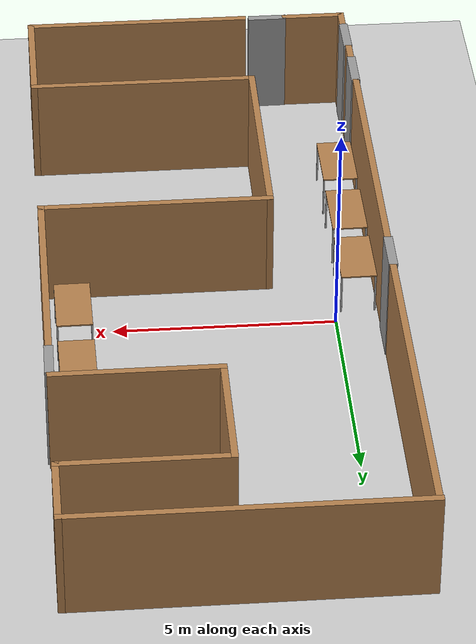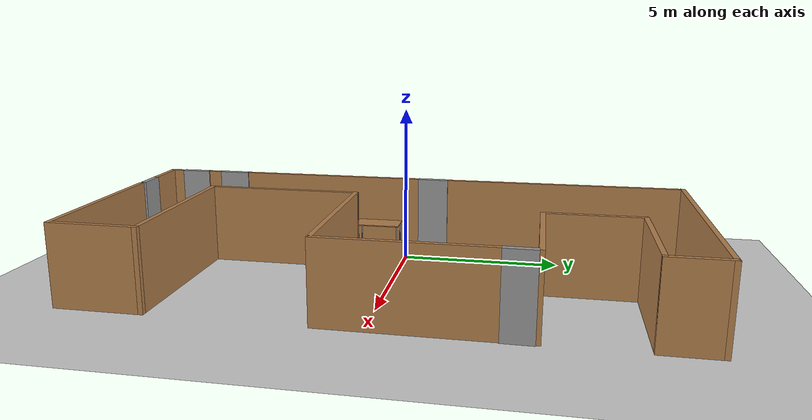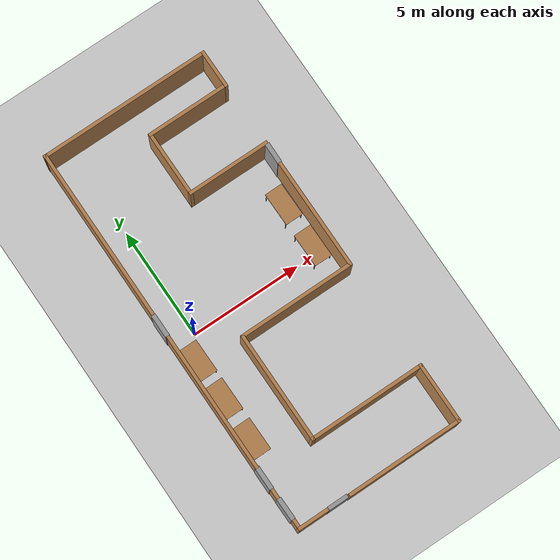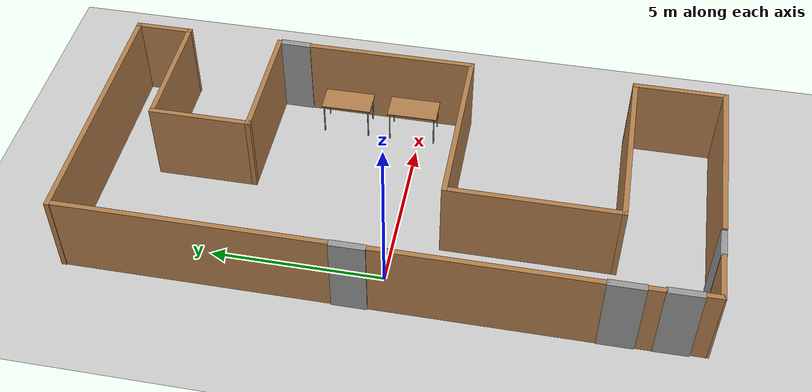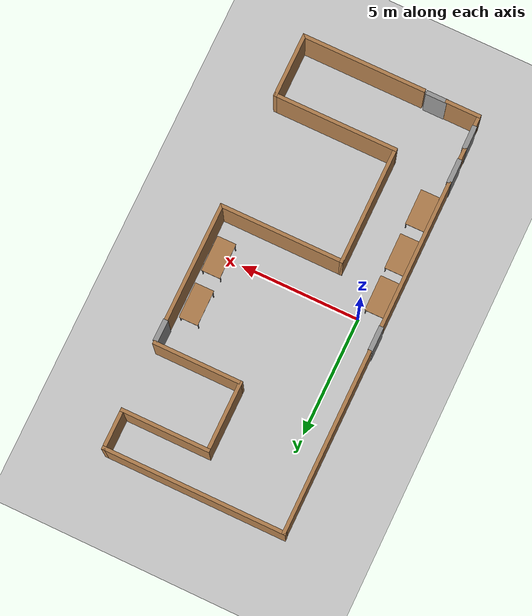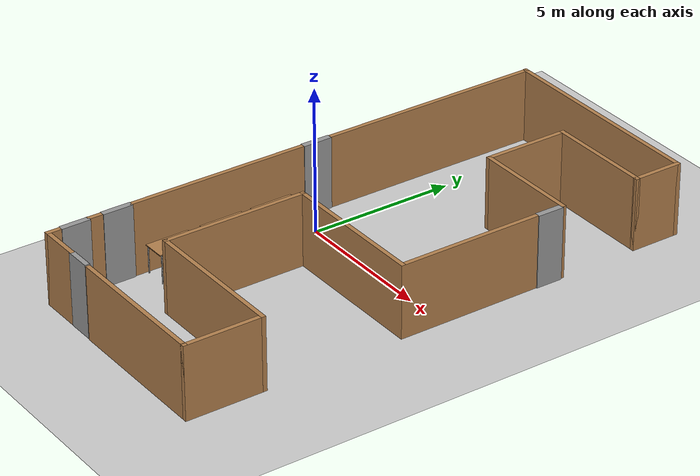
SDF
<sdf version="1.7">
 <world name="default">
  <light name="sun" type="directional">
   <pose>0 0 10 0 -0 0</pose>
   <diffuse>0.8 0.8 0.8 1</diffuse>
   <specular>0.2 0.2 0.2 1</specular>
   <attenuation>
    <range>1000</range>
    <constant>0.9</constant>
    <linear>0.01</linear>
    <quadratic>0.001</quadratic>
   </attenuation>
   <direction>-0.5 0.1 -0.9</direction>
   <spot><inner_angle>0</inner_angle><outer_angle>0</outer_angle><falloff>0</falloff></spot>
  </light>
  <model name="ground_plane">
   <static>1</static>
   <link name="link">
    <collision name="collision">
     <geometry><plane><normal>0 0 1</normal><size>100 100</size></plane></geometry>
     <surface>
      <contact><collide_bitmask>65535</collide_bitmask></contact>
      <friction><ode><mu>100</mu><mu2>50</mu2></ode></friction>
     </surface>
    </collision>
    <visual name="visual">
     <cast_shadows>0</cast_shadows>
     <geometry><plane><normal>0 0 1</normal><size>100 100</size></plane></geometry>
     <material>
      <script><uri>file://media/materials/scripts/gazebo.material</uri><name>Gazebo/Grey</name></script>
     </material>
    </visual>
   </link>
  </model>
  <gravity>0 0 -9.8</gravity>
  <magnetic_field>6e-06 2.3e-05 -4.2e-05</magnetic_field>
  <atmosphere type="adiabatic"/>
  <physics type="ode">
   <max_step_size>0.001</max_step_size>
   <real_time_factor>1</real_time_factor>
   <real_time_update_rate>1000</real_time_update_rate>
  </physics>
  <scene><ambient>0.4 0.4 0.4 1</ambient><background>0.7 0.7 0.7 1</background><shadows>1</shadows></scene>
  <spherical_coordinates>
   <surface_model>EARTH_WGS84</surface_model>
   <latitude_deg>0</latitude_deg>
   <longitude_deg>0</longitude_deg>
   <elevation>0</elevation>
   <heading_deg>0</heading_deg>
  </spherical_coordinates>
  <model name="coworking">
   <pose>2.38403 0.05028 0 0 -0 0</pose>
   <link name="Door_2">
    <collision name="Door_2_Collision">
     <geometry><box><size>0.9 0.17 2.5</size></box></geometry>
     <pose>0 0 1.25 0 -0 0</pose>
    </collision>
    <visual name="Door_2_Visual">
     <pose>0 0 1.25 0 -0 0</pose>
     <geometry><box><size>0.9 0.17 2.5</size></box></geometry>
     <material>
      <script><uri>file://media/materials/scripts/gazebo.material</uri><name>Gazebo/Grey</name></script>
     </material>
    </visual>
    <pose>-1.58523 -8.86817 0 0 -0 0</pose>
   </link>
   <link name="Door_3">
    <collision name="Door_3_Collision">
     <geometry><box><size>0.992 0.2 2.5</size></box></geometry>
     <pose>0 0 1.25 0 -0 0</pose>
    </collision>
    <visual name="Door_3_Visual">
     <pose>0 0 1.25 0 -0 0</pose>
     <geometry><box><size>0.992 0.2 2.5</size></box></geometry>
     <material>
      <script><uri>file://media/materials/scripts/gazebo.material</uri><name>Gazebo/Grey</name></script>
     </material>
    </visual>
    <pose>-3.39441 -7.95054 0 0 -0 -1.56051</pose>
   </link>
   <link name="Door_4">
    <collision name="Door_4_Collision">
     <geometry><box><size>1.033 0.2 2.5</size></box></geometry>
     <pose>0 0 1.25 0 -0 0</pose>
    </collision>
    <visual name="Door_4_Visual">
     <pose>0 0 1.25 0 -0 0</pose>
     <geometry><box><size>1.033 0.2 2.5</size></box></geometry>
     <material>
      <script><uri>file://media/materials/scripts/gazebo.material</uri><name>Gazebo/Grey</name></script>
     </material>
    </visual>
    <pose>-3.41995 -6.48894 0 0 0 -1.56936</pose>
   </link>
   <link name="Door_6">
    <collision name="Door_6_Collision">
     <geometry><box><size>1.009 0.2 2.5</size></box></geometry>
     <pose>0 0 1.25 0 -0 0</pose>
    </collision>
    <visual name="Door_6_Visual">
     <pose>0 0 1.25 0 -0 0</pose>
     <geometry><box><size>1.009 0.2 2.5</size></box></geometry>
     <material>
      <script><uri>file://media/materials/scripts/gazebo.material</uri><name>Gazebo/Grey</name></script>
     </material>
    </visual>
    <pose>-3.43548 0.713593 0 0 -0 -1.57072</pose>
   </link>
   <link name="Door_7">
    <collision name="Door_7_Collision">
     <geometry><box><size>0.917 0.2 2.5</size></box></geometry>
     <pose>0 0 1.25 0 -0 0</pose>
    </collision>
    <visual name="Door_7_Visual">
     <pose>0 0 1.25 0 -0 0</pose>
     <geometry><box><size>0.917 0.2 2.5</size></box></geometry>
     <material>
      <script><uri>file://media/materials/scripts/gazebo.material</uri><name>Gazebo/Grey</name></script>
     </material>
    </visual>
    <pose>4.10778 3.9327 0 0 -0 1.56067</pose>
   </link>
   <link name="Wall_20">
    <collision name="Wall_20_Collision">
     <geometry><box><size>5.25 0.15 2.5</size></box></geometry>
     <pose>0 0 1.25 0 -0 0</pose>
    </collision>
    <visual name="Wall_20_Visual">
     <pose>0 0 1.25 0 -0 0</pose>
     <geometry><box><size>5.25 0.15 2.5</size></box></geometry>
     <material>
      <script><uri>file://media/materials/scripts/gazebo.material</uri><name>Gazebo/Wood</name></script>
      <ambient>1 1 1 1</ambient>
     </material>
     <meta><layer>0</layer></meta>
    </visual>
    <pose>1.54997 -8.89477 0 0 -0 0</pose>
   </link>
   <link name="Wall_21">
    <collision name="Wall_21_Collision">
     <geometry><box><size>2.75 0.15 2.5</size></box></geometry>
     <pose>0 0 1.25 0 -0 0</pose>
    </collision>
    <visual name="Wall_21_Visual">
     <pose>0 0 1.25 0 -0 0</pose>
     <geometry><box><size>2.75 0.15 2.5</size></box></geometry>
     <material>
      <script><uri>file://media/materials/scripts/gazebo.material</uri><name>Gazebo/Wood</name></script>
      <ambient>1 1 1 1</ambient>
     </material>
     <meta><layer>0</layer></meta>
    </visual>
    <pose>4.09997 -7.59477 0 0 -0 1.5708</pose>
   </link>
   <link name="Wall_22">
    <collision name="Wall_22_Collision">
     <geometry><box><size>5.25 0.15 2.5</size></box></geometry>
     <pose>0 0 1.25 0 -0 0</pose>
    </collision>
    <visual name="Wall_22_Visual">
     <pose>0 0 1.25 0 -0 0</pose>
     <geometry><box><size>5.25 0.15 2.5</size></box></geometry>
     <material>
      <script><uri>file://media/materials/scripts/gazebo.material</uri><name>Gazebo/Wood</name></script>
      <ambient>1 1 1 1</ambient>
     </material>
     <meta><layer>0</layer></meta>
    </visual>
    <pose>1.54997 -6.29477 0 0 -0 3.14159</pose>
   </link>
   <link name="Wall_23">
    <collision name="Wall_23_Collision">
     <geometry><box><size>5 0.15 2.5</size></box></geometry>
     <pose>0 0 1.25 0 -0 0</pose>
    </collision>
    <visual name="Wall_23_Visual">
     <pose>0 0 1.25 0 -0 0</pose>
     <geometry><box><size>5 0.15 2.5</size></box></geometry>
     <material>
      <script><uri>file://media/materials/scripts/gazebo.material</uri><name>Gazebo/Wood</name></script>
      <ambient>1 1 1 1</ambient>
     </material>
     <meta><layer>0</layer></meta>
    </visual>
    <pose>-1.00003 -3.86977 0 0 -0 1.5708</pose>
   </link>
   <link name="Wall_24">
    <collision name="Wall_24_Collision">
     <geometry><box><size>5.25 0.15 2.5</size></box></geometry>
     <pose>0 0 1.25 0 -0 0</pose>
    </collision>
    <visual name="Wall_24_Visual">
     <pose>0 0 1.25 0 -0 0</pose>
     <geometry><box><size>5.25 0.15 2.5</size></box></geometry>
     <material>
      <script><uri>file://media/materials/scripts/gazebo.material</uri><name>Gazebo/Wood</name></script>
      <ambient>1 1 1 1</ambient>
     </material>
     <meta><layer>0</layer></meta>
    </visual>
    <pose>1.54997 -1.44477 0 0 -0 0</pose>
   </link>
   <link name="Wall_25">
    <collision name="Wall_25_Collision">
     <geometry><box><size>5 0.15 2.5</size></box></geometry>
     <pose>0 0 1.25 0 -0 0</pose>
    </collision>
    <visual name="Wall_25_Visual">
     <pose>0 0 1.25 0 -0 0</pose>
     <geometry><box><size>5 0.15 2.5</size></box></geometry>
     <material>
      <script><uri>file://media/materials/scripts/gazebo.material</uri><name>Gazebo/Wood</name></script>
      <ambient>1 1 1 1</ambient>
     </material>
     <meta><layer>0</layer></meta>
    </visual>
    <pose>4.09997 0.980234 0 0 -0 1.5708</pose>
   </link>
   <link name="Wall_27">
    <collision name="Wall_27_Collision">
     <geometry><box><size>1.5 0.15 2.5</size></box></geometry>
     <pose>0 0 1.25 0 -0 0</pose>
    </collision>
    <visual name="Wall_27_Visual">
     <pose>0 0 1.25 0 -0 0</pose>
     <geometry><box><size>1.5 0.15 2.5</size></box></geometry>
     <material>
      <script><uri>file://media/materials/scripts/gazebo.material</uri><name>Gazebo/Wood</name></script>
      <ambient>1 1 1 1</ambient>
     </material>
     <meta><layer>0</layer></meta>
    </visual>
    <pose>-2.70225 -8.87117 0 0 -0 3.14159</pose>
   </link>
   <link name="Wall_28">
    <collision name="Wall_28_Collision">
     <geometry><box><size>0.5 0.15 2.5</size></box></geometry>
     <pose>0 0 1.25 0 -0 0</pose>
    </collision>
    <visual name="Wall_28_Visual">
     <pose>0 0 1.25 0 -0 0</pose>
     <geometry><box><size>0.5 0.15 2.5</size></box></geometry>
     <material>
      <script><uri>file://media/materials/scripts/gazebo.material</uri><name>Gazebo/Wood</name></script>
      <ambient>1 1 1 1</ambient>
     </material>
     <meta><layer>0</layer></meta>
    </visual>
    <pose>-3.37725 -8.69617 0 0 -0 1.5708</pose>
   </link>
   <link name="Wall_30">
    <collision name="Wall_30_Collision">
     <geometry><box><size>0.5 0.15 2.5</size></box></geometry>
     <pose>0 0 1.25 0 -0 0</pose>
    </collision>
    <visual name="Wall_30_Visual">
     <pose>0 0 1.25 0 -0 0</pose>
     <geometry><box><size>0.5 0.15 2.5</size></box></geometry>
     <material>
      <script><uri>file://media/materials/scripts/gazebo.material</uri><name>Gazebo/Wood</name></script>
      <ambient>1 1 1 1</ambient>
     </material>
     <meta><layer>0</layer></meta>
    </visual>
    <pose>-3.41461 -7.24963 0 0 -0 1.5708</pose>
   </link>
   <link name="Wall_32">
    <collision name="Wall_32_Collision">
     <geometry><box><size>6.25 0.15 2.5</size></box></geometry>
     <pose>0 0 1.25 0 -0 0</pose>
    </collision>
    <visual name="Wall_32_Visual">
     <pose>0 0 1.25 0 -0 0</pose>
     <geometry><box><size>6.25 0.15 2.5</size></box></geometry>
     <material>
      <script><uri>file://media/materials/scripts/gazebo.material</uri><name>Gazebo/Wood</name></script>
      <ambient>1 1 1 1</ambient>
     </material>
     <meta><layer>0</layer></meta>
    </visual>
    <pose>-3.42883 -2.91407 0 0 -0 1.5708</pose>
   </link>
   <link name="Wall_34">
    <collision name="Wall_34_Collision">
     <geometry><box><size>3.75 0.15 2.5</size></box></geometry>
     <pose>0 0 1.25 0 -0 0</pose>
    </collision>
    <visual name="Wall_34_Visual">
     <pose>0 0 1.25 0 -0 0</pose>
     <geometry><box><size>3.75 0.15 2.5</size></box></geometry>
     <material>
      <script><uri>file://media/materials/scripts/gazebo.material</uri><name>Gazebo/Wood</name></script>
      <ambient>1 1 1 1</ambient>
     </material>
     <meta><layer>0</layer></meta>
    </visual>
    <pose>2.29597 4.44477 0 0 -0 3.14159</pose>
   </link>
   <link name="Wall_35">
    <collision name="Wall_35_Collision">
     <geometry><box><size>3 0.15 2.5</size></box></geometry>
     <pose>0 0 1.25 0 -0 0</pose>
    </collision>
    <visual name="Wall_35_Visual">
     <pose>0 0 1.25 0 -0 0</pose>
     <geometry><box><size>3 0.15 2.5</size></box></geometry>
     <material>
      <script><uri>file://media/materials/scripts/gazebo.material</uri><name>Gazebo/Wood</name></script>
      <ambient>1 1 1 1</ambient>
     </material>
     <meta><layer>0</layer></meta>
    </visual>
    <pose>0.49597 5.86977 0 0 -0 1.5708</pose>
   </link>
   <link name="Wall_36">
    <collision name="Wall_36_Collision">
     <geometry><box><size>3.75 0.15 2.5</size></box></geometry>
     <pose>0 0 1.25 0 -0 0</pose>
    </collision>
    <visual name="Wall_36_Visual">
     <pose>0 0 1.25 0 -0 0</pose>
     <geometry><box><size>3.75 0.15 2.5</size></box></geometry>
     <material>
      <script><uri>file://media/materials/scripts/gazebo.material</uri><name>Gazebo/Wood</name></script>
      <ambient>1 1 1 1</ambient>
     </material>
     <meta><layer>0</layer></meta>
    </visual>
    <pose>2.29597 7.29477 0 0 -0 0</pose>
   </link>
   <link name="Wall_40">
    <collision name="Wall_40_Collision">
     <geometry><box><size>1.75 0.15 2.5</size></box></geometry>
     <pose>0 0 1.25 0 -0 0</pose>
    </collision>
    <visual name="Wall_40_Visual">
     <pose>0 0 1.25 0 -0 0</pose>
     <geometry><box><size>1.75 0.15 2.5</size></box></geometry>
     <material>
      <script><uri>file://media/materials/scripts/gazebo.material</uri><name>Gazebo/Wood</name></script>
      <ambient>1 1 1 1</ambient>
     </material>
     <meta><layer>0</layer></meta>
    </visual>
    <pose>4.09597 8.09477 0 0 -0 1.5708</pose>
   </link>
   <link name="Wall_41">
    <collision name="Wall_41_Collision">
     <geometry><box><size>7.69239 0.15 2.5</size></box></geometry>
     <pose>0 0 1.25 0 -0 0</pose>
    </collision>
    <visual name="Wall_41_Visual">
     <pose>0 0 1.25 0 -0 0</pose>
     <geometry><box><size>7.69239 0.15 2.5</size></box></geometry>
     <material>
      <script><uri>file://media/materials/scripts/gazebo.material</uri><name>Gazebo/Wood</name></script>
      <ambient>1 1 1 1</ambient>
     </material>
     <meta><layer>0</layer></meta>
    </visual>
    <pose>0.324775 8.89477 0 0 -0 3.14159</pose>
   </link>
   <link name="Wall_42">
    <collision name="Wall_42_Collision">
     <geometry><box><size>7.75 0.15 2.5</size></box></geometry>
     <pose>0 0 1.25 0 -0 0</pose>
    </collision>
    <visual name="Wall_42_Visual">
     <pose>0 0 1.25 0 -0 0</pose>
     <geometry><box><size>7.75 0.15 2.5</size></box></geometry>
     <material>
      <script><uri>file://media/materials/scripts/gazebo.material</uri><name>Gazebo/Wood</name></script>
      <ambient>1 1 1 1</ambient>
     </material>
     <meta><layer>0</layer></meta>
    </visual>
    <pose>-3.42893 5.09477 0 0 -0 -1.5708</pose>
   </link>
   <static>1</static>
  </model>
  <model name="table">
   <static>1</static>
   <link name="link">
    <collision name="surface">
     <pose>0 0 1 0 -0 0</pose>
     <geometry><box><size>1.5 0.8 0.03</size></box></geometry>
     <surface><friction><ode><mu>0.6</mu><mu2>0.6</mu2></ode></friction></surface>
    </collision>
    <visual name="visual1">
     <pose>0 0 1 0 -0 0</pose>
     <geometry><box><size>1.5 0.8 0.03</size></box></geometry>
     <material>
      <script><uri>file://media/materials/scripts/gazebo.material</uri><name>Gazebo/Wood</name></script>
     </material>
    </visual>
    <collision name="front_left_leg">
     <pose>0.68 0.38 0.5 0 -0 0</pose>
     <geometry><cylinder><radius>0.02</radius><length>1</length></cylinder></geometry>
    </collision>
    <visual name="front_left_leg">
     <pose>0.68 0.38 0.5 0 -0 0</pose>
     <geometry><cylinder><radius>0.02</radius><length>1</length></cylinder></geometry>
     <material>
      <script><uri>file://media/materials/scripts/gazebo.material</uri><name>Gazebo/Grey</name></script>
     </material>
    </visual>
    <collision name="front_right_leg">
     <pose>0.68 -0.38 0.5 0 -0 0</pose>
     <geometry><cylinder><radius>0.02</radius><length>1</length></cylinder></geometry>
    </collision>
    <visual name="front_right_leg">
     <pose>0.68 -0.38 0.5 0 -0 0</pose>
     <geometry><cylinder><radius>0.02</radius><length>1</length></cylinder></geometry>
     <material>
      <script><uri>file://media/materials/scripts/gazebo.material</uri><name>Gazebo/Grey</name></script>
     </material>
    </visual>
    <collision name="back_right_leg">
     <pose>-0.68 -0.38 0.5 0 -0 0</pose>
     <geometry><cylinder><radius>0.02</radius><length>1</length></cylinder></geometry>
    </collision>
    <visual name="back_right_leg">
     <pose>-0.68 -0.38 0.5 0 -0 0</pose>
     <geometry><cylinder><radius>0.02</radius><length>1</length></cylinder></geometry>
     <material>
      <script><uri>file://media/materials/scripts/gazebo.material</uri><name>Gazebo/Grey</name></script>
     </material>
    </visual>
    <collision name="back_left_leg">
     <pose>-0.68 0.38 0.5 0 -0 0</pose>
     <geometry><cylinder><radius>0.02</radius><length>1</length></cylinder></geometry>
    </collision>
    <visual name="back_left_leg">
     <pose>-0.68 0.38 0.5 0 -0 0</pose>
     <geometry><cylinder><radius>0.02</radius><length>1</length></cylinder></geometry>
     <material>
      <script><uri>file://media/materials/scripts/gazebo.material</uri><name>Gazebo/Grey</name></script>
     </material>
    </visual>
   </link>
   <pose>-0.509975 -4.8128 0 0 -0 1.57879</pose>
  </model>
  <model name="table_clone">
   <static>1</static>
   <link name="link">
    <collision name="surface">
     <pose>0 0 1 0 -0 0</pose>
     <geometry><box><size>1.5 0.8 0.03</size></box></geometry>
     <surface><friction><ode><mu>0.6</mu><mu2>0.6</mu2></ode></friction></surface>
    </collision>
    <visual name="visual1">
     <pose>0 0 1 0 -0 0</pose>
     <geometry><box><size>1.5 0.8 0.03</size></box></geometry>
     <material>
      <script><uri>file://media/materials/scripts/gazebo.material</uri><name>Gazebo/Wood</name></script>
     </material>
    </visual>
    <collision name="front_left_leg">
     <pose>0.68 0.38 0.5 0 -0 0</pose>
     <geometry><cylinder><radius>0.02</radius><length>1</length></cylinder></geometry>
    </collision>
    <visual name="front_left_leg">
     <pose>0.68 0.38 0.5 0 -0 0</pose>
     <geometry><cylinder><radius>0.02</radius><length>1</length></cylinder></geometry>
     <material>
      <script><uri>file://media/materials/scripts/gazebo.material</uri><name>Gazebo/Grey</name></script>
     </material>
    </visual>
    <collision name="front_right_leg">
     <pose>0.68 -0.38 0.5 0 -0 0</pose>
     <geometry><cylinder><radius>0.02</radius><length>1</length></cylinder></geometry>
    </collision>
    <visual name="front_right_leg">
     <pose>0.68 -0.38 0.5 0 -0 0</pose>
     <geometry><cylinder><radius>0.02</radius><length>1</length></cylinder></geometry>
     <material>
      <script><uri>file://media/materials/scripts/gazebo.material</uri><name>Gazebo/Grey</name></script>
     </material>
    </visual>
    <collision name="back_right_leg">
     <pose>-0.68 -0.38 0.5 0 -0 0</pose>
     <geometry><cylinder><radius>0.02</radius><length>1</length></cylinder></geometry>
    </collision>
    <visual name="back_right_leg">
     <pose>-0.68 -0.38 0.5 0 -0 0</pose>
     <geometry><cylinder><radius>0.02</radius><length>1</length></cylinder></geometry>
     <material>
      <script><uri>file://media/materials/scripts/gazebo.material</uri><name>Gazebo/Grey</name></script>
     </material>
    </visual>
    <collision name="back_left_leg">
     <pose>-0.68 0.38 0.5 0 -0 0</pose>
     <geometry><cylinder><radius>0.02</radius><length>1</length></cylinder></geometry>
    </collision>
    <visual name="back_left_leg">
     <pose>-0.68 0.38 0.5 0 -0 0</pose>
     <geometry><cylinder><radius>0.02</radius><length>1</length></cylinder></geometry>
     <material>
      <script><uri>file://media/materials/scripts/gazebo.material</uri><name>Gazebo/Grey</name></script>
     </material>
    </visual>
   </link>
   <pose>-0.518907 -2.88038 0 0 -0 1.57879</pose>
  </model>
  <model name="table_clone_0">
   <static>1</static>
   <link name="link">
    <collision name="surface">
     <pose>0 0 1 0 -0 0</pose>
     <geometry><box><size>1.5 0.8 0.03</size></box></geometry>
     <surface><friction><ode><mu>0.6</mu><mu2>0.6</mu2></ode></friction></surface>
    </collision>
    <visual name="visual1">
     <pose>0 0 1 0 -0 0</pose>
     <geometry><box><size>1.5 0.8 0.03</size></box></geometry>
     <material>
      <script><uri>file://media/materials/scripts/gazebo.material</uri><name>Gazebo/Wood</name></script>
     </material>
    </visual>
    <collision name="front_left_leg">
     <pose>0.68 0.38 0.5 0 -0 0</pose>
     <geometry><cylinder><radius>0.02</radius><length>1</length></cylinder></geometry>
    </collision>
    <visual name="front_left_leg">
     <pose>0.68 0.38 0.5 0 -0 0</pose>
     <geometry><cylinder><radius>0.02</radius><length>1</length></cylinder></geometry>
     <material>
      <script><uri>file://media/materials/scripts/gazebo.material</uri><name>Gazebo/Grey</name></script>
     </material>
    </visual>
    <collision name="front_right_leg">
     <pose>0.68 -0.38 0.5 0 -0 0</pose>
     <geometry><cylinder><radius>0.02</radius><length>1</length></cylinder></geometry>
    </collision>
    <visual name="front_right_leg">
     <pose>0.68 -0.38 0.5 0 -0 0</pose>
     <geometry><cylinder><radius>0.02</radius><length>1</length></cylinder></geometry>
     <material>
      <script><uri>file://media/materials/scripts/gazebo.material</uri><name>Gazebo/Grey</name></script>
     </material>
    </visual>
    <collision name="back_right_leg">
     <pose>-0.68 -0.38 0.5 0 -0 0</pose>
     <geometry><cylinder><radius>0.02</radius><length>1</length></cylinder></geometry>
    </collision>
    <visual name="back_right_leg">
     <pose>-0.68 -0.38 0.5 0 -0 0</pose>
     <geometry><cylinder><radius>0.02</radius><length>1</length></cylinder></geometry>
     <material>
      <script><uri>file://media/materials/scripts/gazebo.material</uri><name>Gazebo/Grey</name></script>
     </material>
    </visual>
    <collision name="back_left_leg">
     <pose>-0.68 0.38 0.5 0 -0 0</pose>
     <geometry><cylinder><radius>0.02</radius><length>1</length></cylinder></geometry>
    </collision>
    <visual name="back_left_leg">
     <pose>-0.68 0.38 0.5 0 -0 0</pose>
     <geometry><cylinder><radius>0.02</radius><length>1</length></cylinder></geometry>
     <material>
      <script><uri>file://media/materials/scripts/gazebo.material</uri><name>Gazebo/Grey</name></script>
     </material>
    </visual>
   </link>
   <pose>-0.521886 -1.04921 0 0 -0 1.57879</pose>
  </model>
  <model name="table_clone_1">
   <static>1</static>
   <link name="link">
    <collision name="surface">
     <pose>0 0 1 0 -0 0</pose>
     <geometry><box><size>1.5 0.8 0.03</size></box></geometry>
     <surface><friction><ode><mu>0.6</mu><mu2>0.6</mu2></ode></friction></surface>
    </collision>
    <visual name="visual1">
     <pose>0 0 1 0 -0 0</pose>
     <geometry><box><size>1.5 0.8 0.03</size></box></geometry>
     <material>
      <script><uri>file://media/materials/scripts/gazebo.material</uri><name>Gazebo/Wood</name></script>
     </material>
    </visual>
    <collision name="front_left_leg">
     <pose>0.68 0.38 0.5 0 -0 0</pose>
     <geometry><cylinder><radius>0.02</radius><length>1</length></cylinder></geometry>
    </collision>
    <visual name="front_left_leg">
     <pose>0.68 0.38 0.5 0 -0 0</pose>
     <geometry><cylinder><radius>0.02</radius><length>1</length></cylinder></geometry>
     <material>
      <script><uri>file://media/materials/scripts/gazebo.material</uri><name>Gazebo/Grey</name></script>
     </material>
    </visual>
    <collision name="front_right_leg">
     <pose>0.68 -0.38 0.5 0 -0 0</pose>
     <geometry><cylinder><radius>0.02</radius><length>1</length></cylinder></geometry>
    </collision>
    <visual name="front_right_leg">
     <pose>0.68 -0.38 0.5 0 -0 0</pose>
     <geometry><cylinder><radius>0.02</radius><length>1</length></cylinder></geometry>
     <material>
      <script><uri>file://media/materials/scripts/gazebo.material</uri><name>Gazebo/Grey</name></script>
     </material>
    </visual>
    <collision name="back_right_leg">
     <pose>-0.68 -0.38 0.5 0 -0 0</pose>
     <geometry><cylinder><radius>0.02</radius><length>1</length></cylinder></geometry>
    </collision>
    <visual name="back_right_leg">
     <pose>-0.68 -0.38 0.5 0 -0 0</pose>
     <geometry><cylinder><radius>0.02</radius><length>1</length></cylinder></geometry>
     <material>
      <script><uri>file://media/materials/scripts/gazebo.material</uri><name>Gazebo/Grey</name></script>
     </material>
    </visual>
    <collision name="back_left_leg">
     <pose>-0.68 0.38 0.5 0 -0 0</pose>
     <geometry><cylinder><radius>0.02</radius><length>1</length></cylinder></geometry>
    </collision>
    <visual name="back_left_leg">
     <pose>-0.68 0.38 0.5 0 -0 0</pose>
     <geometry><cylinder><radius>0.02</radius><length>1</length></cylinder></geometry>
     <material>
      <script><uri>file://media/materials/scripts/gazebo.material</uri><name>Gazebo/Grey</name></script>
     </material>
    </visual>
   </link>
   <pose>5.85528 2.2683 0 0 -0 1.57879</pose>
  </model>
  <model name="table_clone_2">
   <static>1</static>
   <link name="link">
    <collision name="surface">
     <pose>0 0 1 0 -0 0</pose>
     <geometry><box><size>1.5 0.8 0.03</size></box></geometry>
     <surface><friction><ode><mu>0.6</mu><mu2>0.6</mu2></ode></friction></surface>
    </collision>
    <visual name="visual1">
     <pose>0 0 1 0 -0 0</pose>
     <geometry><box><size>1.5 0.8 0.03</size></box></geometry>
     <material>
      <script><uri>file://media/materials/scripts/gazebo.material</uri><name>Gazebo/Wood</name></script>
     </material>
    </visual>
    <collision name="front_left_leg">
     <pose>0.68 0.38 0.5 0 -0 0</pose>
     <geometry><cylinder><radius>0.02</radius><length>1</length></cylinder></geometry>
    </collision>
    <visual name="front_left_leg">
     <pose>0.68 0.38 0.5 0 -0 0</pose>
     <geometry><cylinder><radius>0.02</radius><length>1</length></cylinder></geometry>
     <material>
      <script><uri>file://media/materials/scripts/gazebo.material</uri><name>Gazebo/Grey</name></script>
     </material>
    </visual>
    <collision name="front_right_leg">
     <pose>0.68 -0.38 0.5 0 -0 0</pose>
     <geometry><cylinder><radius>0.02</radius><length>1</length></cylinder></geometry>
    </collision>
    <visual name="front_right_leg">
     <pose>0.68 -0.38 0.5 0 -0 0</pose>
     <geometry><cylinder><radius>0.02</radius><length>1</length></cylinder></geometry>
     <material>
      <script><uri>file://media/materials/scripts/gazebo.material</uri><name>Gazebo/Grey</name></script>
     </material>
    </visual>
    <collision name="back_right_leg">
     <pose>-0.68 -0.38 0.5 0 -0 0</pose>
     <geometry><cylinder><radius>0.02</radius><length>1</length></cylinder></geometry>
    </collision>
    <visual name="back_right_leg">
     <pose>-0.68 -0.38 0.5 0 -0 0</pose>
     <geometry><cylinder><radius>0.02</radius><length>1</length></cylinder></geometry>
     <material>
      <script><uri>file://media/materials/scripts/gazebo.material</uri><name>Gazebo/Grey</name></script>
     </material>
    </visual>
    <collision name="back_left_leg">
     <pose>-0.68 0.38 0.5 0 -0 0</pose>
     <geometry><cylinder><radius>0.02</radius><length>1</length></cylinder></geometry>
    </collision>
    <visual name="back_left_leg">
     <pose>-0.68 0.38 0.5 0 -0 0</pose>
     <geometry><cylinder><radius>0.02</radius><length>1</length></cylinder></geometry>
     <material>
      <script><uri>file://media/materials/scripts/gazebo.material</uri><name>Gazebo/Grey</name></script>
     </material>
    </visual>
   </link>
   <pose>5.87335 0.233847 0 0 -0 1.57879</pose>
  </model>
 </world>
</sdf>
